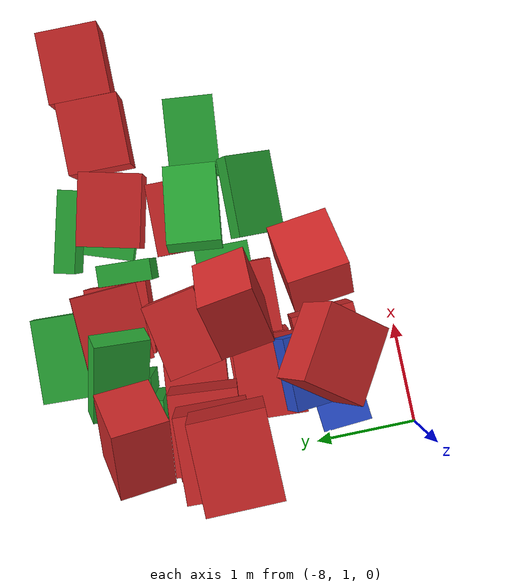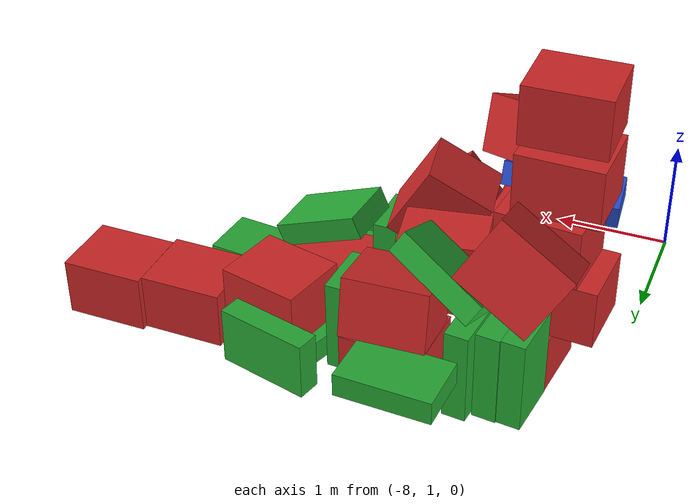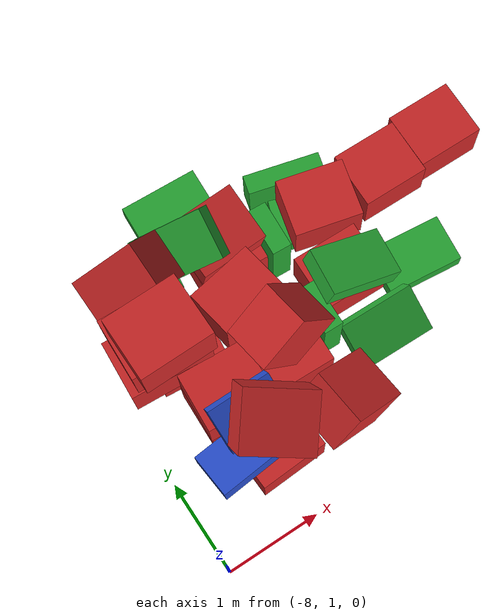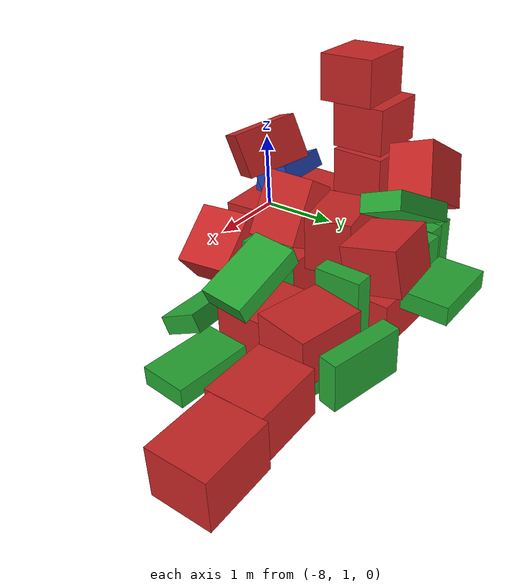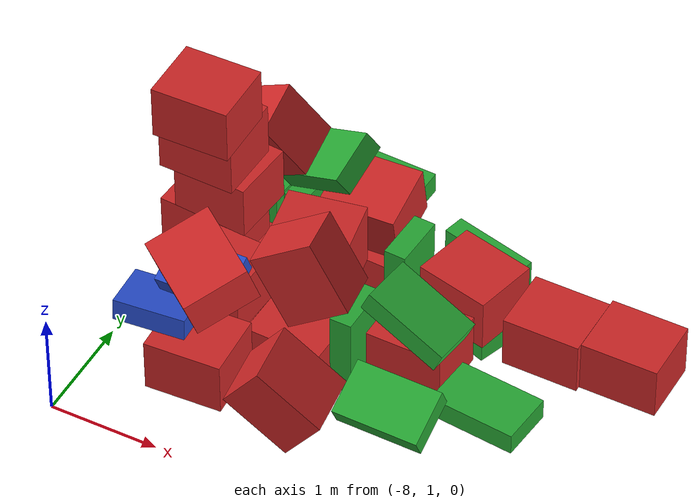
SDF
<sdf version="1.6">
 <world name="default">
  <model name="baggage_D_clone_46">
   <static>0</static>
   <link name="link">
    <collision name="collision"><geometry><box><size>0.8 0.5 0.2</size></box></geometry></collision>
    <visual name="visual">
     <geometry><box><size>0.8 0.5 0.2</size></box></geometry>
     <material>
      <script><uri>file://media/materials/scripts/gazebo.material</uri><name>Gazebo/Green</name></script>
     </material>
    </visual>
    <inertial>
     <inertia><ixx>1</ixx><ixy>0</ixy><ixz>0</ixz><iyy>1</iyy><iyz>0</iyz><izz>1</izz></inertia>
     <mass>1</mass>
    </inertial>
   </link>
   <pose>-4.7447 2.60673 0.09997 0 -1e-06 -0.10302</pose>
  </model>
  <model name="baggage_D_clone_50">
   <static>0</static>
   <link name="link">
    <collision name="collision"><geometry><box><size>0.8 0.5 0.2</size></box></geometry></collision>
    <visual name="visual">
     <geometry><box><size>0.8 0.5 0.2</size></box></geometry>
     <material>
      <script><uri>file://media/materials/scripts/gazebo.material</uri><name>Gazebo/Green</name></script>
     </material>
    </visual>
    <inertial>
     <inertia><ixx>1</ixx><ixy>0</ixy><ixz>0</ixz><iyy>1</iyy><iyz>0</iyz><izz>1</izz></inertia>
     <mass>1</mass>
    </inertial>
   </link>
   <pose>-5.42369 2.15394 0.197607 0.443534 -2e-06 -0.020375</pose>
  </model>
  <model name="baggage_D_clone_54">
   <static>0</static>
   <link name="link">
    <collision name="collision"><geometry><box><size>0.8 0.5 0.2</size></box></geometry></collision>
    <visual name="visual">
     <geometry><box><size>0.8 0.5 0.2</size></box></geometry>
     <material>
      <script><uri>file://media/materials/scripts/gazebo.material</uri><name>Gazebo/Green</name></script>
     </material>
    </visual>
    <inertial>
     <inertia><ixx>1</ixx><ixy>0</ixy><ixz>0</ixz><iyy>1</iyy><iyz>0</iyz><izz>1</izz></inertia>
     <mass>1</mass>
    </inertial>
   </link>
   <pose>-5.45646 2.7268 0.739934 -0.041904 0.403261 -0.126365</pose>
  </model>
  <model name="baggage_D_clone_56">
   <static>0</static>
   <link name="link">
    <collision name="collision"><geometry><box><size>0.8 0.5 0.2</size></box></geometry></collision>
    <visual name="visual">
     <geometry><box><size>0.8 0.5 0.2</size></box></geometry>
     <material>
      <script><uri>file://media/materials/scripts/gazebo.material</uri><name>Gazebo/Green</name></script>
     </material>
    </visual>
    <inertial>
     <inertia><ixx>1</ixx><ixy>0</ixy><ixz>0</ixz><iyy>1</iyy><iyz>0</iyz><izz>1</izz></inertia>
     <mass>1</mass>
    </inertial>
   </link>
   <pose>-5.36942 3.53036 0.100019 -1.4e-05 4.7e-05 -0.337762</pose>
  </model>
  <model name="baggage_D_clone_59">
   <static>0</static>
   <link name="link">
    <collision name="collision"><geometry><box><size>0.8 0.5 0.2</size></box></geometry></collision>
    <visual name="visual">
     <geometry><box><size>0.8 0.5 0.2</size></box></geometry>
     <material>
      <script><uri>file://media/materials/scripts/gazebo.material</uri><name>Gazebo/Green</name></script>
     </material>
    </visual>
    <inertial>
     <inertia><ixx>1</ixx><ixy>0</ixy><ixz>0</ixz><iyy>1</iyy><iyz>0</iyz><izz>1</izz></inertia>
     <mass>1</mass>
    </inertial>
   </link>
   <pose>-5.95478 2.54574 0.400229 0.001758 -1.5683 -0.021686</pose>
  </model>
  <model name="baggage_D_clone_63">
   <static>0</static>
   <link name="link">
    <collision name="collision"><geometry><box><size>0.8 0.5 0.2</size></box></geometry></collision>
    <visual name="visual">
     <geometry><box><size>0.8 0.5 0.2</size></box></geometry>
     <material>
      <script><uri>file://media/materials/scripts/gazebo.material</uri><name>Gazebo/Green</name></script>
     </material>
    </visual>
    <inertial>
     <inertia><ixx>1</ixx><ixy>0</ixy><ixz>0</ixz><iyy>1</iyy><iyz>0</iyz><izz>1</izz></inertia>
     <mass>1</mass>
    </inertial>
   </link>
   <pose>-5.42491 3.96427 0.249965 -1.57079 2e-06 -0.252962</pose>
  </model>
  <model name="baggage_D_clone_68">
   <static>0</static>
   <link name="link">
    <collision name="collision"><geometry><box><size>0.8 0.5 0.2</size></box></geometry></collision>
    <visual name="visual">
     <geometry><box><size>0.8 0.5 0.2</size></box></geometry>
     <material>
      <script><uri>file://media/materials/scripts/gazebo.material</uri><name>Gazebo/Green</name></script>
     </material>
    </visual>
    <inertial>
     <inertia><ixx>1</ixx><ixy>0</ixy><ixz>0</ixz><iyy>1</iyy><iyz>0</iyz><izz>1</izz></inertia>
     <mass>1</mass>
    </inertial>
   </link>
   <pose>-5.92588 3.46821 0.400831 -0.001529 -1.56227 -0.051132</pose>
  </model>
  <model name="baggage_D_clone_69">
   <static>0</static>
   <link name="link">
    <collision name="collision"><geometry><box><size>0.8 0.5 0.2</size></box></geometry></collision>
    <visual name="visual">
     <geometry><box><size>0.8 0.5 0.2</size></box></geometry>
     <material>
      <script><uri>file://media/materials/scripts/gazebo.material</uri><name>Gazebo/Green</name></script>
     </material>
    </visual>
    <inertial>
     <inertia><ixx>1</ixx><ixy>0</ixy><ixz>0</ixz><iyy>1</iyy><iyz>0</iyz><izz>1</izz></inertia>
     <mass>1</mass>
    </inertial>
   </link>
   <pose>-6.99461 3.68803 0.399992 -1.76092 -1.57079 1.66061</pose>
  </model>
  <model name="baggage_D_clone_70">
   <static>0</static>
   <link name="link">
    <collision name="collision"><geometry><box><size>0.8 0.5 0.2</size></box></geometry></collision>
    <visual name="visual">
     <geometry><box><size>0.8 0.5 0.2</size></box></geometry>
     <material>
      <script><uri>file://media/materials/scripts/gazebo.material</uri><name>Gazebo/Green</name></script>
     </material>
    </visual>
    <inertial>
     <inertia><ixx>1</ixx><ixy>0</ixy><ixz>0</ixz><iyy>1</iyy><iyz>0</iyz><izz>1</izz></inertia>
     <mass>1</mass>
    </inertial>
   </link>
   <pose>-7.41958 3.62525 0.400346 0.904904 -1.57074 -1.01105</pose>
  </model>
  <model name="baggage_D_clone_71">
   <static>0</static>
   <link name="link">
    <collision name="collision"><geometry><box><size>0.8 0.5 0.2</size></box></geometry></collision>
    <visual name="visual">
     <geometry><box><size>0.8 0.5 0.2</size></box></geometry>
     <material>
      <script><uri>file://media/materials/scripts/gazebo.material</uri><name>Gazebo/Green</name></script>
     </material>
    </visual>
    <inertial>
     <inertia><ixx>1</ixx><ixy>0</ixy><ixz>0</ixz><iyy>1</iyy><iyz>0</iyz><izz>1</izz></inertia>
     <mass>1</mass>
    </inertial>
   </link>
   <pose>-7.21936 3.61674 0.399962 -1.57803 -1.57079 1.47322</pose>
  </model>
  <model name="baggage_D_clone_74">
   <static>0</static>
   <link name="link">
    <collision name="collision"><geometry><box><size>0.8 0.5 0.2</size></box></geometry></collision>
    <visual name="visual">
     <geometry><box><size>0.8 0.5 0.2</size></box></geometry>
     <material>
      <script><uri>file://media/materials/scripts/gazebo.material</uri><name>Gazebo/Green</name></script>
     </material>
    </visual>
    <inertial>
     <inertia><ixx>1</ixx><ixy>0</ixy><ixz>0</ixz><iyy>1</iyy><iyz>0</iyz><izz>1</izz></inertia>
     <mass>1</mass>
    </inertial>
   </link>
   <pose>-6.79858 3.6565 1.16196 0.413252 -0.473294 -0.290811</pose>
  </model>
  <model name="baggage_D_clone_79">
   <static>0</static>
   <link name="link">
    <collision name="collision"><geometry><box><size>0.8 0.5 0.2</size></box></geometry></collision>
    <visual name="visual">
     <geometry><box><size>0.8 0.5 0.2</size></box></geometry>
     <material>
      <script><uri>file://media/materials/scripts/gazebo.material</uri><name>Gazebo/Green</name></script>
     </material>
    </visual>
    <inertial>
     <inertia><ixx>1</ixx><ixy>0</ixy><ixz>0</ixz><iyy>1</iyy><iyz>0</iyz><izz>1</izz></inertia>
     <mass>1</mass>
    </inertial>
   </link>
   <pose>-6.5959 4.22346 0.499724 2.8e-05 9e-06 -0.043998</pose>
  </model>
  <model name="baggage_A_clone_71">
   <static>0</static>
   <link name="link">
    <collision name="collision"><geometry><box><size>0.7 0.6 0.5</size></box></geometry></collision>
    <visual name="visual">
     <geometry><box><size>0.7 0.6 0.5</size></box></geometry>
     <material>
      <script><uri>file://media/materials/scripts/gazebo.material</uri><name>Gazebo/Red</name></script>
     </material>
    </visual>
    <inertial>
     <inertia><ixx>1</ixx><ixy>0</ixy><ixz>0</ixz><iyy>1</iyy><iyz>0</iyz><izz>1</izz></inertia>
     <mass>1</mass>
    </inertial>
   </link>
   <pose>-3.85699 3.5669 0.250001 2e-06 -0 -0.008079</pose>
  </model>
  <model name="baggage_A_clone_72">
   <static>0</static>
   <link name="link">
    <collision name="collision"><geometry><box><size>0.7 0.6 0.5</size></box></geometry></collision>
    <visual name="visual">
     <geometry><box><size>0.7 0.6 0.5</size></box></geometry>
     <material>
      <script><uri>file://media/materials/scripts/gazebo.material</uri><name>Gazebo/Red</name></script>
     </material>
    </visual>
    <inertial>
     <inertia><ixx>1</ixx><ixy>0</ixy><ixz>0</ixz><iyy>1</iyy><iyz>0</iyz><izz>1</izz></inertia>
     <mass>1</mass>
    </inertial>
   </link>
   <pose>-4.5586 3.52116 0.250001 -2e-06 0 -0.012082</pose>
  </model>
  <model name="baggage_A_clone_73">
   <static>0</static>
   <link name="link">
    <collision name="collision"><geometry><box><size>0.7 0.6 0.5</size></box></geometry></collision>
    <visual name="visual">
     <geometry><box><size>0.7 0.6 0.5</size></box></geometry>
     <material>
      <script><uri>file://media/materials/scripts/gazebo.material</uri><name>Gazebo/Red</name></script>
     </material>
    </visual>
    <inertial>
     <inertia><ixx>1</ixx><ixy>0</ixy><ixz>0</ixz><iyy>1</iyy><iyz>0</iyz><izz>1</izz></inertia>
     <mass>1</mass>
    </inertial>
   </link>
   <pose>-5.31911 3.49511 0.450022 -1.4e-05 3.1e-05 -0.239813</pose>
  </model>
  <model name="baggage_A_clone_74">
   <static>0</static>
   <link name="link">
    <collision name="collision"><geometry><box><size>0.7 0.6 0.5</size></box></geometry></collision>
    <visual name="visual">
     <geometry><box><size>0.7 0.6 0.5</size></box></geometry>
     <material>
      <script><uri>file://media/materials/scripts/gazebo.material</uri><name>Gazebo/Red</name></script>
     </material>
    </visual>
    <inertial>
     <inertia><ixx>1</ixx><ixy>0</ixy><ixz>0</ixz><iyy>1</iyy><iyz>0</iyz><izz>1</izz></inertia>
     <mass>1</mass>
    </inertial>
   </link>
   <pose>-5.49851 2.84627 0.250002 0 6e-06 -0.019922</pose>
  </model>
  <model name="baggage_A_clone_74">
   <static>0</static>
   <link name="link">
    <collision name="collision"><geometry><box><size>0.7 0.6 0.5</size></box></geometry></collision>
    <visual name="visual">
     <geometry><box><size>0.7 0.6 0.5</size></box></geometry>
     <material>
      <script><uri>file://media/materials/scripts/gazebo.material</uri><name>Gazebo/Red</name></script>
     </material>
    </visual>
    <inertial>
     <inertia><ixx>1</ixx><ixy>0</ixy><ixz>0</ixz><iyy>1</iyy><iyz>0</iyz><izz>1</izz></inertia>
     <mass>1</mass>
    </inertial>
   </link>
   <pose>-5.49851 2.84627 0.250002 0 6e-06 -0.019922</pose>
  </model>
  <model name="baggage_A_clone_75">
   <static>0</static>
   <link name="link">
    <collision name="collision"><geometry><box><size>0.7 0.6 0.5</size></box></geometry></collision>
    <visual name="visual">
     <geometry><box><size>0.7 0.6 0.5</size></box></geometry>
     <material>
      <script><uri>file://media/materials/scripts/gazebo.material</uri><name>Gazebo/Red</name></script>
     </material>
    </visual>
    <inertial>
     <inertia><ixx>1</ixx><ixy>0</ixy><ixz>0</ixz><iyy>1</iyy><iyz>0</iyz><izz>1</izz></inertia>
     <mass>1</mass>
    </inertial>
   </link>
   <pose>-6.38416 2.54424 1.01078 1.37195 1.03164 -0.019916</pose>
  </model>
  <model name="baggage_A_clone_76">
   <static>0</static>
   <link name="link">
    <collision name="collision"><geometry><box><size>0.7 0.6 0.5</size></box></geometry></collision>
    <visual name="visual">
     <geometry><box><size>0.7 0.6 0.5</size></box></geometry>
     <material>
      <script><uri>file://media/materials/scripts/gazebo.material</uri><name>Gazebo/Red</name></script>
     </material>
    </visual>
    <inertial>
     <inertia><ixx>1</ixx><ixy>0</ixy><ixz>0</ixz><iyy>1</iyy><iyz>0</iyz><izz>1</izz></inertia>
     <mass>1</mass>
    </inertial>
   </link>
   <pose>-6.56171 3.04211 0.799992 1.57092 -1.8e-05 0.178369</pose>
  </model>
  <model name="baggage_A_clone_77">
   <static>0</static>
   <link name="link">
    <collision name="collision"><geometry><box><size>0.7 0.6 0.5</size></box></geometry></collision>
    <visual name="visual">
     <geometry><box><size>0.7 0.6 0.5</size></box></geometry>
     <material>
      <script><uri>file://media/materials/scripts/gazebo.material</uri><name>Gazebo/Red</name></script>
     </material>
    </visual>
    <inertial>
     <inertia><ixx>1</ixx><ixy>0</ixy><ixz>0</ixz><iyy>1</iyy><iyz>0</iyz><izz>1</izz></inertia>
     <mass>1</mass>
    </inertial>
   </link>
   <pose>-6.3891 3.68703 0.803509 0.190104 -0.003995 0.042935</pose>
  </model>
  <model name="baggage_A_clone_78">
   <static>0</static>
   <link name="link">
    <collision name="collision"><geometry><box><size>0.7 0.6 0.5</size></box></geometry></collision>
    <visual name="visual">
     <geometry><box><size>0.7 0.6 0.5</size></box></geometry>
     <material>
      <script><uri>file://media/materials/scripts/gazebo.material</uri><name>Gazebo/Red</name></script>
     </material>
    </visual>
    <inertial>
     <inertia><ixx>1</ixx><ixy>0</ixy><ixz>0</ixz><iyy>1</iyy><iyz>0</iyz><izz>1</izz></inertia>
     <mass>1</mass>
    </inertial>
   </link>
   <pose>-6.37232 3.63792 0.249974 9e-06 -7.3e-05 -0.054999</pose>
  </model>
  <model name="baggage_A_clone_85">
   <static>0</static>
   <link name="link">
    <collision name="collision"><geometry><box><size>0.7 0.6 0.5</size></box></geometry></collision>
    <visual name="visual">
     <geometry><box><size>0.7 0.6 0.5</size></box></geometry>
     <material>
      <script><uri>file://media/materials/scripts/gazebo.material</uri><name>Gazebo/Red</name></script>
     </material>
    </visual>
    <inertial>
     <inertia><ixx>1</ixx><ixy>0</ixy><ixz>0</ixz><iyy>1</iyy><iyz>0</iyz><izz>1</izz></inertia>
     <mass>1</mass>
    </inertial>
   </link>
   <pose>-6.99396 1.72552 0.448922 -0.001406 -0.000641 0.05131</pose>
  </model>
  <model name="baggage_A_clone_86">
   <static>0</static>
   <link name="link">
    <collision name="collision"><geometry><box><size>0.7 0.6 0.5</size></box></geometry></collision>
    <visual name="visual">
     <geometry><box><size>0.7 0.6 0.5</size></box></geometry>
     <material>
      <script><uri>file://media/materials/scripts/gazebo.material</uri><name>Gazebo/Red</name></script>
     </material>
    </visual>
    <inertial>
     <inertia><ixx>1</ixx><ixy>0</ixy><ixz>0</ixz><iyy>1</iyy><iyz>0</iyz><izz>1</izz></inertia>
     <mass>1</mass>
    </inertial>
   </link>
   <pose>-6.9627 1.79483 1.38303 0.348171 0.229448 -0.574647</pose>
  </model>
  <model name="baggage_A_clone_87">
   <static>0</static>
   <link name="link">
    <collision name="collision"><geometry><box><size>0.7 0.6 0.5</size></box></geometry></collision>
    <visual name="visual">
     <geometry><box><size>0.7 0.6 0.5</size></box></geometry>
     <material>
      <script><uri>file://media/materials/scripts/gazebo.material</uri><name>Gazebo/Red</name></script>
     </material>
    </visual>
    <inertial>
     <inertia><ixx>1</ixx><ixy>0</ixy><ixz>0</ixz><iyy>1</iyy><iyz>0</iyz><izz>1</izz></inertia>
     <mass>1</mass>
    </inertial>
   </link>
   <pose>-6.17455 1.72903 0.412809 -6.2e-05 0.665848 0.11688</pose>
  </model>
  <model name="baggage_A_clone_89">
   <static>0</static>
   <link name="link">
    <collision name="collision"><geometry><box><size>0.7 0.6 0.5</size></box></geometry></collision>
    <visual name="visual">
     <geometry><box><size>0.7 0.6 0.5</size></box></geometry>
     <material>
      <script><uri>file://media/materials/scripts/gazebo.material</uri><name>Gazebo/Red</name></script>
     </material>
    </visual>
    <inertial>
     <inertia><ixx>1</ixx><ixy>0</ixy><ixz>0</ixz><iyy>1</iyy><iyz>0</iyz><izz>1</izz></inertia>
     <mass>1</mass>
    </inertial>
   </link>
   <pose>-6.41165 2.41876 0.249002 -7e-05 -0.0002 -0.030917</pose>
  </model>
  <model name="baggage_A_clone_90">
   <static>0</static>
   <link name="link">
    <collision name="collision"><geometry><box><size>0.7 0.6 0.5</size></box></geometry></collision>
    <visual name="visual">
     <geometry><box><size>0.7 0.6 0.5</size></box></geometry>
     <material>
      <script><uri>file://media/materials/scripts/gazebo.material</uri><name>Gazebo/Red</name></script>
     </material>
    </visual>
    <inertial>
     <inertia><ixx>1</ixx><ixy>0</ixy><ixz>0</ixz><iyy>1</iyy><iyz>0</iyz><izz>1</izz></inertia>
     <mass>1</mass>
    </inertial>
   </link>
   <pose>-7.11942 2.35764 0.750039 0.000108 0.001567 -0.057648</pose>
  </model>
  <model name="baggage_A_clone_91">
   <static>0</static>
   <link name="link">
    <collision name="collision"><geometry><box><size>0.7 0.6 0.5</size></box></geometry></collision>
    <visual name="visual">
     <geometry><box><size>0.7 0.6 0.5</size></box></geometry>
     <material>
      <script><uri>file://media/materials/scripts/gazebo.material</uri><name>Gazebo/Red</name></script>
     </material>
    </visual>
    <inertial>
     <inertia><ixx>1</ixx><ixy>0</ixy><ixz>0</ixz><iyy>1</iyy><iyz>0</iyz><izz>1</izz></inertia>
     <mass>1</mass>
    </inertial>
   </link>
   <pose>-7.11369 2.38454 0.249587 0.000109 0.000185 -0.029105</pose>
  </model>
  <model name="baggage_A_clone_93">
   <static>0</static>
   <link name="link">
    <collision name="collision"><geometry><box><size>0.7 0.6 0.5</size></box></geometry></collision>
    <visual name="visual">
     <geometry><box><size>0.7 0.6 0.5</size></box></geometry>
     <material>
      <script><uri>file://media/materials/scripts/gazebo.material</uri><name>Gazebo/Red</name></script>
     </material>
    </visual>
    <inertial>
     <inertia><ixx>1</ixx><ixy>0</ixy><ixz>0</ixz><iyy>1</iyy><iyz>0</iyz><izz>1</izz></inertia>
     <mass>1</mass>
    </inertial>
   </link>
   <pose>-7.44076 2.7541 2.25008 -7.6e-05 3e-06 0.011574</pose>
  </model>
  <model name="baggage_A_clone_94">
   <static>0</static>
   <link name="link">
    <collision name="collision"><geometry><box><size>0.7 0.6 0.5</size></box></geometry></collision>
    <visual name="visual">
     <geometry><box><size>0.7 0.6 0.5</size></box></geometry>
     <material>
      <script><uri>file://media/materials/scripts/gazebo.material</uri><name>Gazebo/Red</name></script>
     </material>
    </visual>
    <inertial>
     <inertia><ixx>1</ixx><ixy>0</ixy><ixz>0</ixz><iyy>1</iyy><iyz>0</iyz><izz>1</izz></inertia>
     <mass>1</mass>
    </inertial>
   </link>
   <pose>-7.34628 3.61352 1.29348 -1.22919 -0.524508 -0.143042</pose>
  </model>
  <model name="baggage_A_clone_95">
   <static>0</static>
   <link name="link">
    <collision name="collision"><geometry><box><size>0.7 0.6 0.5</size></box></geometry></collision>
    <visual name="visual">
     <geometry><box><size>0.7 0.6 0.5</size></box></geometry>
     <material>
      <script><uri>file://media/materials/scripts/gazebo.material</uri><name>Gazebo/Red</name></script>
     </material>
    </visual>
    <inertial>
     <inertia><ixx>1</ixx><ixy>0</ixy><ixz>0</ixz><iyy>1</iyy><iyz>0</iyz><izz>1</izz></inertia>
     <mass>1</mass>
    </inertial>
   </link>
   <pose>-7.38266 2.97988 1.2502 -0.00013 -4.2e-05 -0.086932</pose>
  </model>
  <model name="baggage_A_clone_96">
   <static>0</static>
   <link name="link">
    <collision name="collision"><geometry><box><size>0.7 0.6 0.5</size></box></geometry></collision>
    <visual name="visual">
     <geometry><box><size>0.7 0.6 0.5</size></box></geometry>
     <material>
      <script><uri>file://media/materials/scripts/gazebo.material</uri><name>Gazebo/Red</name></script>
     </material>
    </visual>
    <inertial>
     <inertia><ixx>1</ixx><ixy>0</ixy><ixz>0</ixz><iyy>1</iyy><iyz>0</iyz><izz>1</izz></inertia>
     <mass>1</mass>
    </inertial>
   </link>
   <pose>-7.47595 2.90446 1.75007 -7.6e-05 0 -0.032598</pose>
  </model>
  <model name="baggage_A_clone_97">
   <static>0</static>
   <link name="link">
    <collision name="collision"><geometry><box><size>0.7 0.6 0.5</size></box></geometry></collision>
    <visual name="visual">
     <geometry><box><size>0.7 0.6 0.5</size></box></geometry>
     <material>
      <script><uri>file://media/materials/scripts/gazebo.material</uri><name>Gazebo/Red</name></script>
     </material>
    </visual>
    <inertial>
     <inertia><ixx>1</ixx><ixy>0</ixy><ixz>0</ixz><iyy>1</iyy><iyz>0</iyz><izz>1</izz></inertia>
     <mass>1</mass>
    </inertial>
   </link>
   <pose>-7.53982 3.0006 0.749984 -0.00011 -3e-06 -0.059676</pose>
  </model>
  <model name="baggage_A_clone_98">
   <static>0</static>
   <link name="link">
    <collision name="collision"><geometry><box><size>0.7 0.6 0.5</size></box></geometry></collision>
    <visual name="visual">
     <geometry><box><size>0.7 0.6 0.5</size></box></geometry>
     <material>
      <script><uri>file://media/materials/scripts/gazebo.material</uri><name>Gazebo/Red</name></script>
     </material>
    </visual>
    <inertial>
     <inertia><ixx>1</ixx><ixy>0</ixy><ixz>0</ixz><iyy>1</iyy><iyz>0</iyz><izz>1</izz></inertia>
     <mass>1</mass>
    </inertial>
   </link>
   <pose>-7.2233 3.05393 0.249909 -4e-06 8e-06 -0.098293</pose>
  </model>
  <model name="baggage_B_clone_47">
   <static>0</static>
   <link name="link">
    <collision name="collision"><geometry><box><size>0.65 0.45 0.2</size></box></geometry></collision>
    <visual name="visual">
     <geometry><box><size>0.65 0.45 0.2</size></box></geometry>
     <material>
      <script><uri>file://media/materials/scripts/gazebo.material</uri><name>Gazebo/Blue</name></script>
     </material>
    </visual>
    <inertial>
     <inertia><ixx>1</ixx><ixy>0</ixy><ixz>0</ixz><iyy>1</iyy><iyz>0</iyz><izz>1</izz></inertia>
     <mass>1</mass>
    </inertial>
   </link>
   <pose>-7.0928 2.01675 1.09739 0.414147 -0.007628 0.00244</pose>
  </model>
  <model name="baggage_B_clone_65">
   <static>0</static>
   <link name="link">
    <collision name="collision"><geometry><box><size>0.65 0.45 0.2</size></box></geometry></collision>
    <visual name="visual">
     <geometry><box><size>0.65 0.45 0.2</size></box></geometry>
     <material>
      <script><uri>file://media/materials/scripts/gazebo.material</uri><name>Gazebo/Blue</name></script>
     </material>
    </visual>
    <inertial>
     <inertia><ixx>1</ixx><ixy>0</ixy><ixz>0</ixz><iyy>1</iyy><iyz>0</iyz><izz>1</izz></inertia>
     <mass>1</mass>
    </inertial>
   </link>
   <pose>-7.37409 1.76863 0.820494 -0.09736 0.001911 0.09297</pose>
  </model>
 </world>
</sdf>
